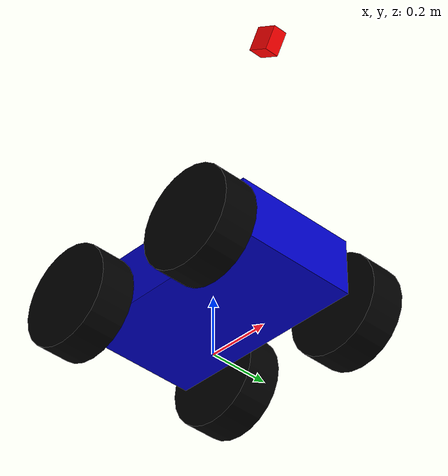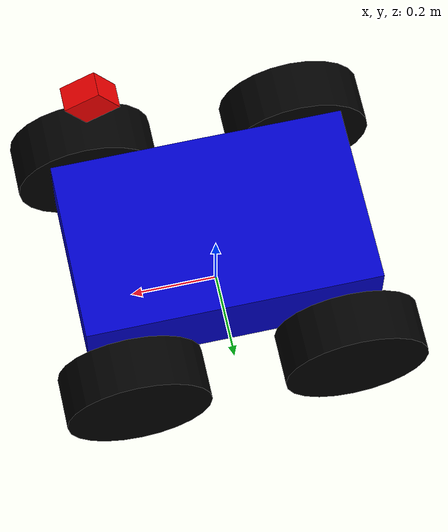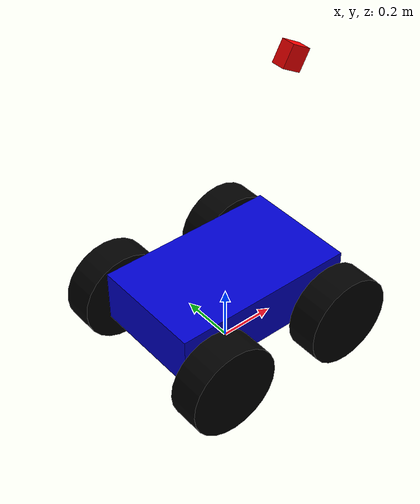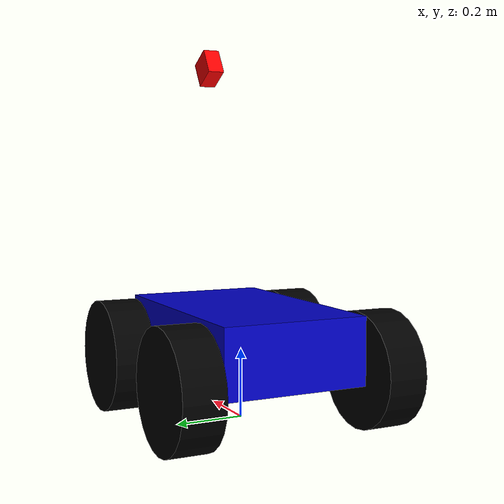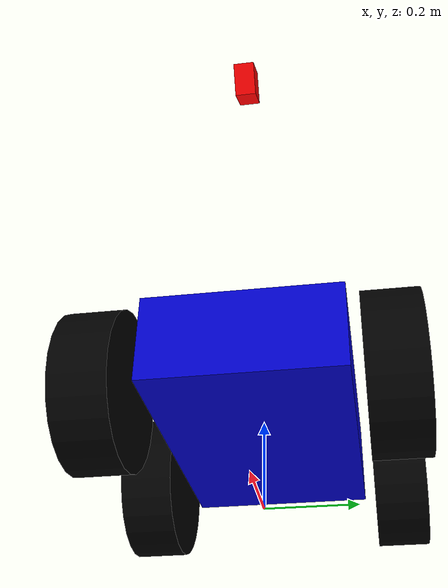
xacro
<?xml version="1.0"?>
<robot name="basic_outdoor_robot" xmlns:xacro="http://www.ros.org/wiki/xacro">

    <material name="blue">
        <color rgba="0 0 0.8 1"/>
    </material>
    <material name="black">
        <color rgba="0 0 0 1"/>
    </material>
    <material name="white">
        <color rgba="1 1 1 1"/>
    </material>
    <material name="red">
        <color rgba="1 0 0 1"/>
    </material>

    <!-- File Include -->
    <xacro:include filename="$(find basic_outdoor_robot_description)/urdf/accessories/wheel.xacro"/>
    <xacro:include filename="$(find basic_outdoor_robot_description)/urdf/accessories/depth_camera.xacro"/>

    <!-- Variables -->
    <xacro:property name="M_PI" value="3.1415926535897931"/>

    <!-- Robot Geometries -->
    <xacro:property name="base_x_size" value="0.672" />
    <xacro:property name="base_y_size" value="0.270" />
    <xacro:property name="base_z_size" value="0.190" />
    <xacro:property name="base_mass" value="20.0" />

    <xacro:property name="wheelbase" value="0.498" />
    <xacro:property name="track" value="0.583" />
    <xacro:property name="wheel_vertical_offset" value="-0.070" />
    <xacro:property name="base_offset" value="0.140" />

    <xacro:property name="wheel_width" value="0.116" />
    <xacro:property name="wheel_radius" value="0.165" />

    <!-- Dummy Values -->
    <xacro:property name="dummy_inertia" value="1e-09"/>

    <!-- Camera Properties -->
    <xacro:property name="depth_camera_xyz" value="0.25 0 0.8"/>
    <xacro:property name="depth_camera_rpy" value="0 ${M_PI/6} 0"/>

    <!-- ros2 control params -->
    <xacro:arg name="ros2_control_config" default="$(find basic_outdoor_robot_description)/config/control.yaml" />

    <!-- Base Link -->
    <link name="base_link">
        <visual>
            <origin xyz="0 0 0" rpy="0 0 0" />
            <geometry>
                <box size="${base_x_size} ${wheelbase-wheel_radius/2} ${base_z_size}"/>
            </geometry>
            <material name="blue"/>
        </visual>
        <collision>
            <origin xyz="0 0 0" rpy="0 0 0" />
            <geometry>
                <box size="${base_x_size} ${wheelbase-wheel_radius/2} ${base_z_size}"/>
            </geometry>
        </collision>
        <inertial>
            <origin xyz="0 0 0" rpy="0 0 0" />
            <mass value="${base_mass}"/>
            <inertia ixx="${(base_mass/12)*(base_y_size*base_y_size+base_z_size*base_z_size)}" ixy="0.0" ixz="0.0"
                iyy="${(base_mass/12)*(base_x_size*base_x_size+base_z_size*base_z_size)}" iyz="0.0"
                izz="${(base_mass/12)*(base_x_size*base_x_size+base_y_size*base_y_size)}" />
        </inertial>

    </link>

    <!-- Base Footprint -->
    <link name="base_footprint"/>

    <joint name="base_footprint_joint" type="fixed">
        <origin xyz="0 0 ${-wheel_vertical_offset + wheel_radius}" rpy="0 0 0" />
        <parent link="base_footprint" />
        <child link="base_link" />
    </joint>

    <!-- Wheels -->
    <xacro:robot_wheel wheel_prefix="front_right">
        <origin xyz="${wheelbase/2} ${-track/2} ${wheel_vertical_offset}" rpy="0 0 0" />
    </xacro:robot_wheel>

    <xacro:robot_wheel wheel_prefix="front_left">
        <origin xyz="${wheelbase/2} ${track/2} ${wheel_vertical_offset}" rpy="0 0 0" />
    </xacro:robot_wheel>

    <xacro:robot_wheel wheel_prefix="rear_left">
        <origin xyz="${-wheelbase/2} ${track/2} ${wheel_vertical_offset}" rpy="0 0 0" />
    </xacro:robot_wheel>

    <xacro:robot_wheel wheel_prefix="rear_right">
        <origin xyz="${-wheelbase/2} ${-track/2} ${wheel_vertical_offset}" rpy="0 0 0" />
    </xacro:robot_wheel>

    <!-- IMU -->
    <joint name="imu_joint" type="fixed">
        <origin xyz="0 0 0" rpy="0 0 0" />
        <parent link="base_link"/>
        <child link="imu_link" />
    </joint>

    <link name="imu_link">
    </link>

    <!-- Depth Camera -->
    <xacro:depth_camera name="depth_camera" inertia="${dummy_inertia}">
        <origin xyz="0 -0.0105 0" rpy=" ${M_PI/2} ${M_PI} ${M_PI/2}" />
        <material name="red"/>
        <origin xyz="${depth_camera_xyz}" rpy="${depth_camera_rpy}"/>
    </xacro:depth_camera>

    <xacro:include filename="$(find basic_outdoor_robot_description)/urdf/basic_outdoor_robot.gazebo" />
</robot>

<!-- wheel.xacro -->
<robot xmlns:xacro="http://www.ros.org/wiki/xacro" name="basic_outdoor_robot_wheel">
    <xacro:macro name="robot_wheel" params="wheel_prefix *joint_pose">
        <link name="${wheel_prefix}_wheel_link">
            <inertial>
                <mass value="3" />
                <origin xyz="0 0 0" />
                <inertia ixx="0.7171" ixy="0" ixz="0" iyy="0.1361" iyz="0" izz="0.7171" />
            </inertial>
            <visual>
                <origin xyz="0 0 0" rpy="${M_PI/2} 0 0" />
                <geometry>
                    <cylinder length="${wheel_width}" radius="${wheel_radius}" />
                </geometry>
                <material name="black"/>
            </visual>
            <collision>
                <origin xyz="0 0 0" rpy="${M_PI/2} 0 0" />
                <geometry>
                    <cylinder length="${wheel_width}" radius="${wheel_radius}" />
                </geometry>
            </collision>
        </link>

        <joint name="${wheel_prefix}_wheel_joint" type="continuous">
            <parent link="base_link"/>
            <child link="${wheel_prefix}_wheel_link"/>
            <xacro:insert_block name="joint_pose"/>
            <axis xyz="0 1 0" rpy="0 0 0" />
        </joint>
    </xacro:macro>

</robot>

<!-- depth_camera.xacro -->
<robot xmlns:xacro="http://ros.org/wiki/xacro" name="depth_camera">
    <xacro:property name="camera_length" value="0.05" />
    <xacro:property name="camera_width" value="0.08" />
    <xacro:property name="camera_height" value="0.08" />
    <xacro:property name="camera_mass" value="0.2"/>
    <xacro:macro name="depth_camera" params="name inertia *visual_pose *material *joint_pose">

        <link name="${name}_link">
            <visual>
                <xacro:insert_block name="visual_pose"/>
                <geometry>
                    <box size="${camera_length} ${camera_width} ${camera_height}" />
                </geometry>
                <xacro:insert_block name="material"/>
            </visual>
            <collision>
                <origin xyz="0 0 0" rpy="0 0 0" />
                <geometry>
                    <box size="${camera_length} ${camera_width} ${camera_height}" />
                </geometry>
            </collision>
            <inertial>
                <origin xyz="0.0 0.0 0.0" rpy="0.0 0.0 0.0"/>
                <mass value="${camera_mass}"/>
                <inertia ixx="${inertia}" ixy="0.0" ixz="0.0" iyy="${inertia}" iyz="0.0" izz="${inertia}"/>
            </inertial>

        </link>

        <joint name="${name}_joint" type="fixed">
            <parent link="base_link"/>
            <child link="${name}_link"/>
            <xacro:insert_block name="joint_pose"/>
            <axis xyz="0 -1 0" rpy="0 0 0" />
        </joint>

        <link name ="${name}_optical_link">
        </link>

        <joint name="${name}_optical_joint" type="fixed">
            <parent link="${name}_link"/>
            <child link="${name}_optical_link"/>
            <axis xyz="0 -1 0" rpy="${-M_PI} 0 ${-M_PI}"/>
        </joint>
    </xacro:macro>

</robot>
